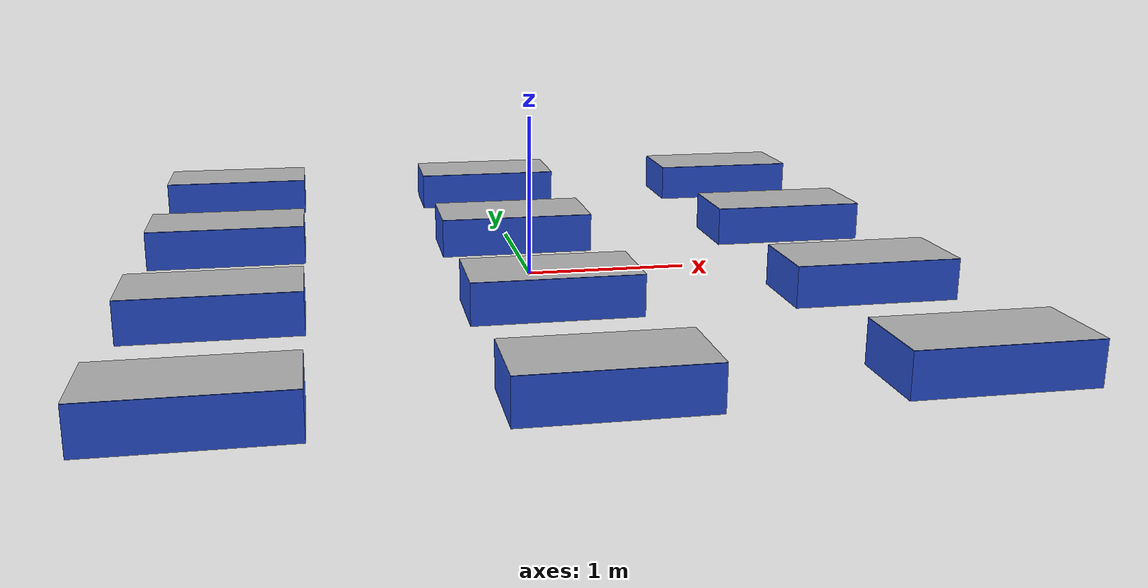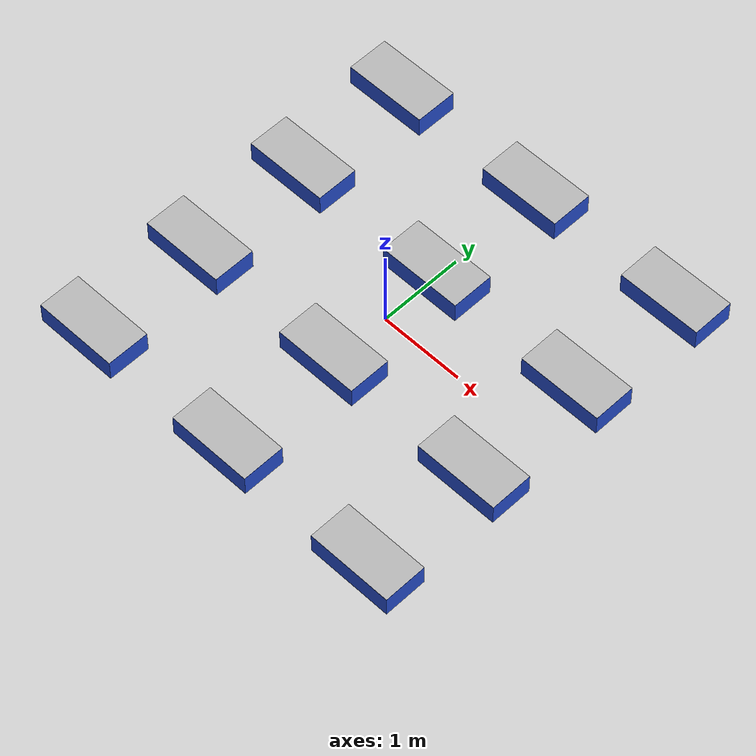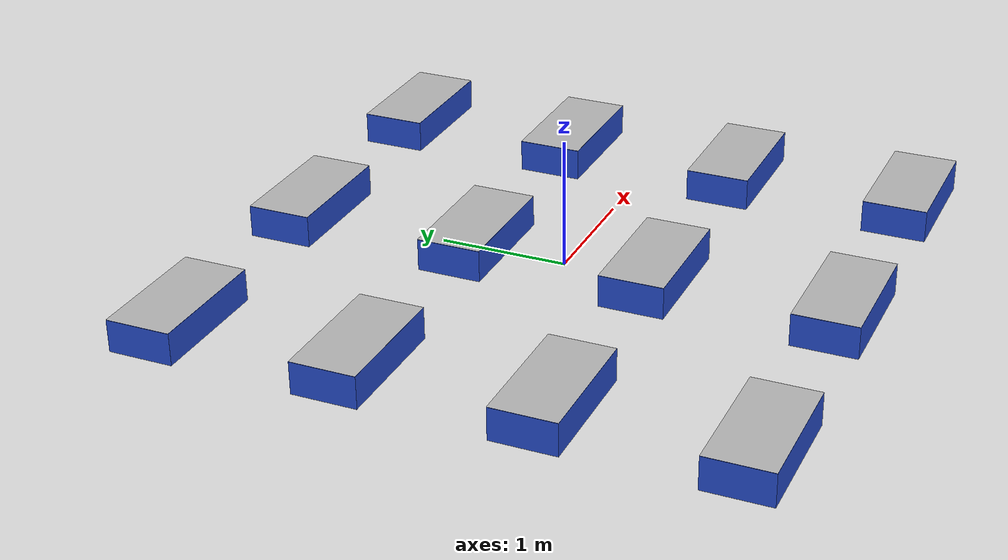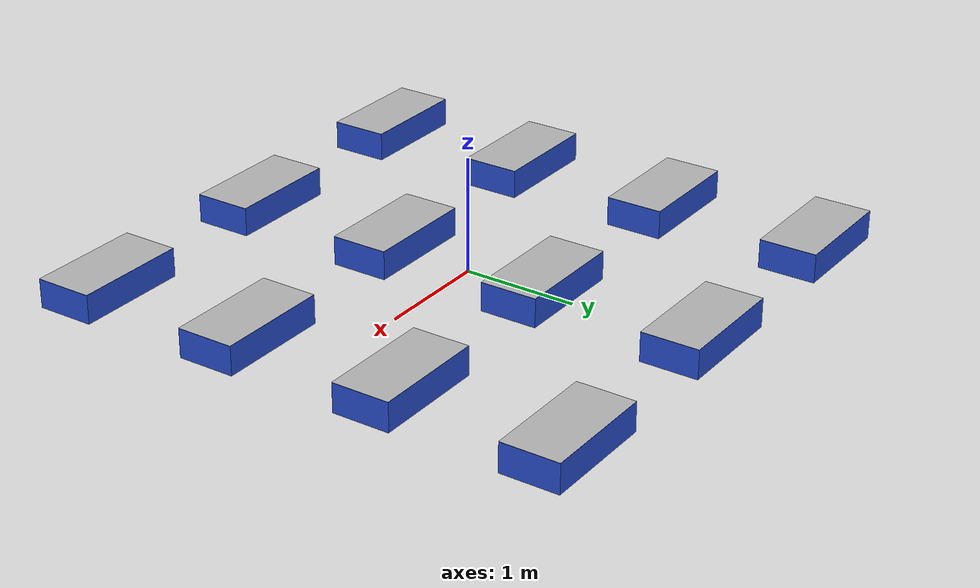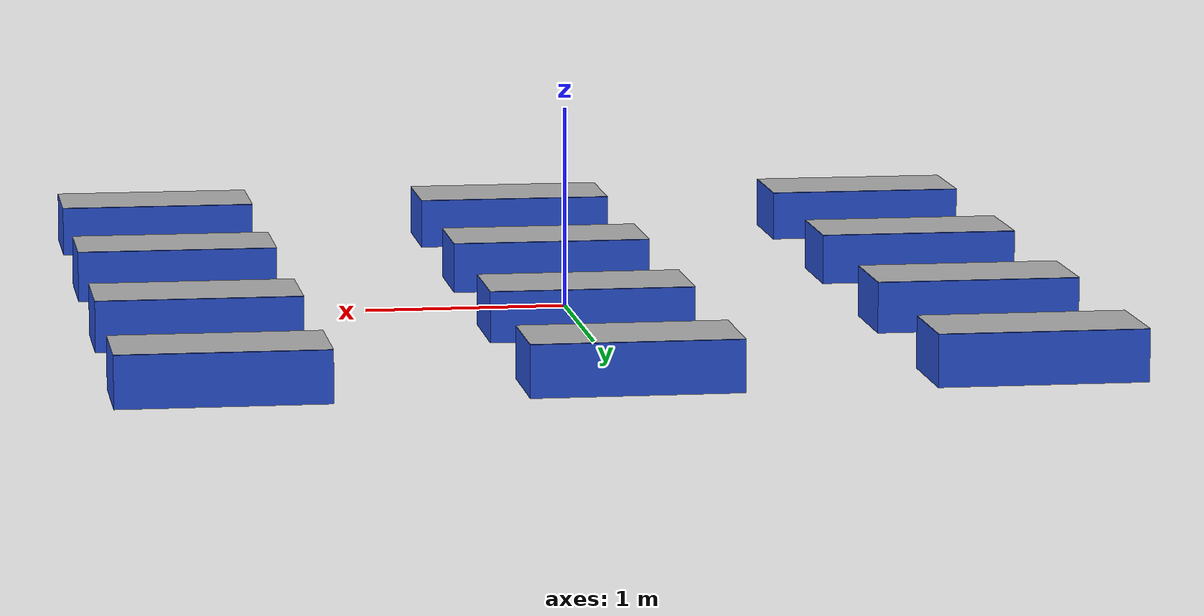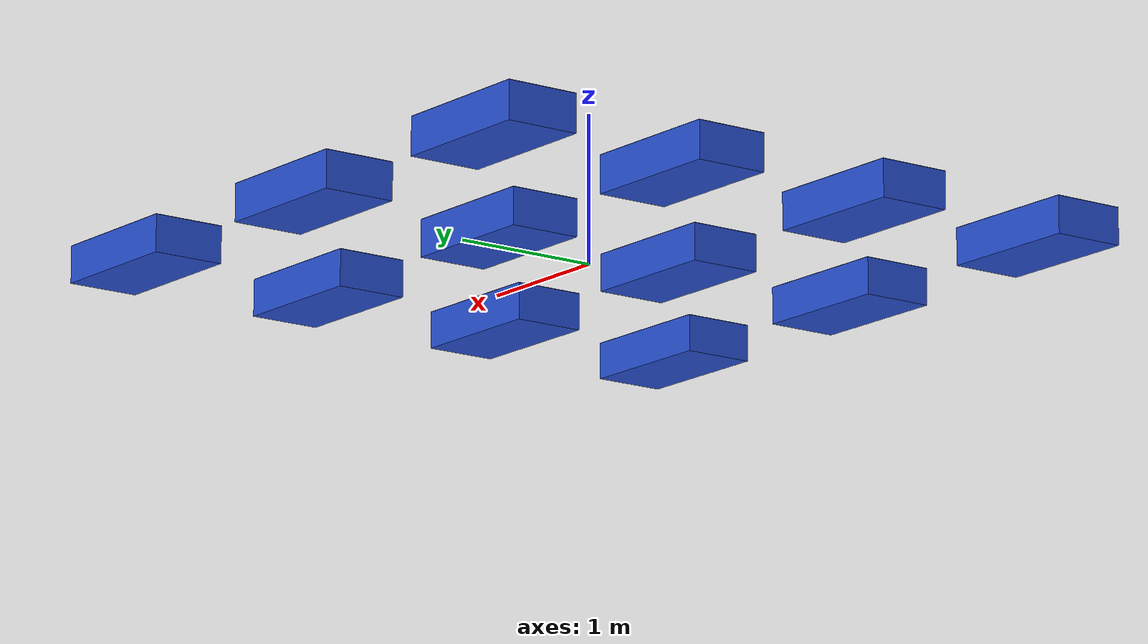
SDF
<?xml version='1.0'?>
<sdf version='1.6'>
  <model name='box_level'>
    <static>false</static>
    <include>
      <uri>model://logo_box1</uri>
      <name>box0</name>
      <static>false</static>
      <pose>1.9 2.15 0 0 0 0</pose>
    </include>
    <include>
      <uri>model://logo_box2</uri>
      <name>box1</name>
      <static>false</static>
      <pose>0 2.15 0 0 0 3.1415926</pose>
    </include>
    <include>
      <uri>model://logo_box3</uri>
      <name>box2</name>
      <static>false</static>
      <pose>-1.9 2.15 0 0 0 3.1415926</pose>
    </include>
    <include>
      <uri>model://logo_box4</uri>
      <name>box3</name>
      <static>false</static>
      <pose>1.9 0.72 0 0 0 0</pose>
    </include>
    <include>
      <uri>model://logo_box5</uri>
      <name>box4</name>
      <static>false</static>
      <pose>0 0.72 0 0 0 0</pose>
    </include>
    <include>
      <uri>model://logo_box6</uri>
      <name>box5</name>
      <static>false</static>
      <pose>-1.9 0.72 0 0 0 0</pose>
    </include>
    <include>
      <uri>model://logo_box7</uri>
      <name>box6</name>
      <static>false</static>
      <pose>1.9 -0.72 0 0 0 3.1415926</pose>
    </include>
    <include>
      <uri>model://logo_box8</uri>
      <name>box7</name>
      <static>false</static>
      <pose>0 -0.72 0 0 0 0</pose>
    </include>
    <include>
      <uri>model://logo_box9</uri>
      <name>box8</name>
      <static>false</static>
      <pose>-1.9 -0.72 0 0 0 3.1415926</pose>
    </include>
    <include>
      <uri>model://logo_box10</uri>
      <name>box9</name>
      <static>false</static>
      <pose>1.9 -2.15 0 0 0 3.1415926</pose>
    </include>
    <include>
      <uri>model://logo_box11</uri>
      <name>box10</name>
      <static>false</static>
      <pose>0 -2.15 0 0 0 0</pose>
    </include>
    <include>
      <uri>model://logo_box12</uri>
      <name>box11</name>
      <static>false</static>
      <pose>-1.9 -2.15 0 0 0 3.1415926</pose>
    </include>
  </model>
</sdf>

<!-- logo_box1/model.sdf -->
<sdf version='1.6'>
  <model name='logo_box1'>
    <static>false</static>
    <link name='box'>
      <pose>0 0 0.25 0 0 0</pose>
      <inertial>
        <mass>2</mass>
        <inertia>
          <ixx>0.052083</ixx>
          <ixy>0</ixy>
          <ixz>0</ixz>
          <iyy>0.177083</iyy>
          <iyz>0</iyz>
          <izz>0.208333</izz>
        </inertia>
      </inertial>
      <visual name='box'>
        <pose>0 0 -0.125 0 0 0</pose>
        <cast_shadows>true</cast_shadows>
        <geometry>
          <box>
            <size>1 0.5 0.25</size>
          </box>
        </geometry>
        <material>
          <script>
            <uri>file://media/materials/scripts/gazebo.material</uri>
            <name>Gazebo/Blue</name>
          </script>
        </material>
      </visual>
      <visual name='logo'>
        <pose>-0 0 0.002 0 0 0</pose>
        <cast_shadows>false</cast_shadows>
        <geometry>
          <plane>
            <normal>0 0 1</normal>
            <size>1 0.5</size>
          </plane>
        </geometry>
        <material>
          <script>
            <uri>model://logo_box/materials/scripts</uri>
            <uri>model://logo_box/materials/textures</uri>
            <name>tian_gong_zhu_ta/logo1</name>
          </script>
        </material>
      </visual>
      <collision name='box'>
        <pose>0 0 -0.125 0 0 0</pose>
        <geometry>
          <box>
            <size>1 0.5 0.25</size>
          </box>
        </geometry>
        <surface>
          <friction>
            <ode>
              <mu>100</mu>
              <mu2>50</mu2>
            </ode>
          </friction>
        </surface>
      </collision>
    </link>
  </model>
</sdf>

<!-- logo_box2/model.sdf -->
<sdf version='1.6'>
  <model name='logo_box2'>
    <static>false</static>
    <link name='box'>
      <pose>0 0 0.25 0 0 0</pose>
      <inertial>
        <mass>2</mass>
        <inertia>
          <ixx>0.052083</ixx>
          <ixy>0</ixy>
          <ixz>0</ixz>
          <iyy>0.177083</iyy>
          <iyz>0</iyz>
          <izz>0.208333</izz>
        </inertia>
      </inertial>
      <visual name='box'>
        <pose>0 0 -0.125 0 0 0</pose>
        <cast_shadows>true</cast_shadows>
        <geometry>
          <box>
            <size>1 0.5 0.25</size>
          </box>
        </geometry>
        <material>
          <script>
            <uri>file://media/materials/scripts/gazebo.material</uri>
            <name>Gazebo/Blue</name>
          </script>
        </material>
      </visual>
      <visual name='logo'>
        <pose>-0 0 0.002 0 0 0</pose>
        <cast_shadows>false</cast_shadows>
        <geometry>
          <plane>
            <normal>0 0 1</normal>
            <size>1 0.5</size>
          </plane>
        </geometry>
        <material>
          <script>
            <uri>model://logo_box/materials/scripts</uri>
            <uri>model://logo_box/materials/textures</uri>
            <name>tian_gong_zhu_ta/logo2</name>
          </script>
        </material>
      </visual>
      <collision name='box'>
        <pose>0 0 -0.125 0 0 0</pose>
        <geometry>
          <box>
            <size>1 0.5 0.25</size>
          </box>
        </geometry>
        <surface>
          <friction>
            <ode>
              <mu>100</mu>
              <mu2>50</mu2>
            </ode>
          </friction>
        </surface>
      </collision>
    </link>
  </model>
</sdf>

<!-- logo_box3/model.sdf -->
<sdf version='1.6'>
  <model name='logo_box3'>
    <static>false</static>
    <link name='box'>
      <pose>0 0 0.25 0 0 0</pose>
      <inertial>
        <mass>2</mass>
        <inertia>
          <ixx>0.052083</ixx>
          <ixy>0</ixy>
          <ixz>0</ixz>
          <iyy>0.177083</iyy>
          <iyz>0</iyz>
          <izz>0.208333</izz>
        </inertia>
      </inertial>
      <visual name='box'>
        <pose>0 0 -0.125 0 0 0</pose>
        <cast_shadows>true</cast_shadows>
        <geometry>
          <box>
            <size>1 0.5 0.25</size>
          </box>
        </geometry>
        <material>
          <script>
            <uri>file://media/materials/scripts/gazebo.material</uri>
            <name>Gazebo/Blue</name>
          </script>
        </material>
      </visual>
      <visual name='logo'>
        <pose>-0 0 0.002 0 0 0</pose>
        <cast_shadows>false</cast_shadows>
        <geometry>
          <plane>
            <normal>0 0 1</normal>
            <size>1 0.5</size>
          </plane>
        </geometry>
        <material>
          <script>
            <uri>model://logo_box/materials/scripts</uri>
            <uri>model://logo_box/materials/textures</uri>
            <name>tian_gong_zhu_ta/logo3</name>
          </script>
        </material>
      </visual>
      <collision name='box'>
        <pose>0 0 -0.125 0 0 0</pose>
        <geometry>
          <box>
            <size>1 0.5 0.25</size>
          </box>
        </geometry>
        <surface>
          <friction>
            <ode>
              <mu>100</mu>
              <mu2>50</mu2>
            </ode>
          </friction>
        </surface>
      </collision>
    </link>
  </model>
</sdf>

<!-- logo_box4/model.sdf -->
<sdf version='1.6'>
  <model name='logo_box4'>
    <static>false</static>
    <link name='box'>
      <pose>0 0 0.25 0 0 0</pose>
      <inertial>
        <mass>2</mass>
        <inertia>
          <ixx>0.052083</ixx>
          <ixy>0</ixy>
          <ixz>0</ixz>
          <iyy>0.177083</iyy>
          <iyz>0</iyz>
          <izz>0.208333</izz>
        </inertia>
      </inertial>
      <visual name='box'>
        <pose>0 0 -0.125 0 0 0</pose>
        <cast_shadows>true</cast_shadows>
        <geometry>
          <box>
            <size>1 0.5 0.25</size>
          </box>
        </geometry>
        <material>
          <script>
            <uri>file://media/materials/scripts/gazebo.material</uri>
            <name>Gazebo/Blue</name>
          </script>
        </material>
      </visual>
      <visual name='logo'>
        <pose>-0 0 0.002 0 0 0</pose>
        <cast_shadows>false</cast_shadows>
        <geometry>
          <plane>
            <normal>0 0 1</normal>
            <size>1 0.5</size>
          </plane>
        </geometry>
        <material>
          <script>
            <uri>model://logo_box/materials/scripts</uri>
            <uri>model://logo_box/materials/textures</uri>
            <name>tian_gong_zhu_ta/logo4</name>
          </script>
        </material>
      </visual>
      <collision name='box'>
        <pose>0 0 -0.125 0 0 0</pose>
        <geometry>
          <box>
            <size>1 0.5 0.25</size>
          </box>
        </geometry>
        <surface>
          <friction>
            <ode>
              <mu>100</mu>
              <mu2>50</mu2>
            </ode>
          </friction>
        </surface>
      </collision>
    </link>
  </model>
</sdf>

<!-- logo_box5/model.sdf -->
<sdf version='1.6'>
  <model name='logo_box5'>
    <static>false</static>
    <link name='box'>
      <pose>0 0 0.25 0 0 0</pose>
      <inertial>
        <mass>2</mass>
        <inertia>
          <ixx>0.052083</ixx>
          <ixy>0</ixy>
          <ixz>0</ixz>
          <iyy>0.177083</iyy>
          <iyz>0</iyz>
          <izz>0.208333</izz>
        </inertia>
      </inertial>
      <visual name='box'>
        <pose>0 0 -0.125 0 0 0</pose>
        <cast_shadows>true</cast_shadows>
        <geometry>
          <box>
            <size>1 0.5 0.25</size>
          </box>
        </geometry>
        <material>
          <script>
            <uri>file://media/materials/scripts/gazebo.material</uri>
            <name>Gazebo/Blue</name>
          </script>
        </material>
      </visual>
      <visual name='logo'>
        <pose>-0 0 0.002 0 0 0</pose>
        <cast_shadows>false</cast_shadows>
        <geometry>
          <plane>
            <normal>0 0 1</normal>
            <size>1 0.5</size>
          </plane>
        </geometry>
        <material>
          <script>
            <uri>model://logo_box/materials/scripts</uri>
            <uri>model://logo_box/materials/textures</uri>
            <name>tian_gong_zhu_ta/logo5</name>
          </script>
        </material>
      </visual>
      <collision name='box'>
        <pose>0 0 -0.125 0 0 0</pose>
        <geometry>
          <box>
            <size>1 0.5 0.25</size>
          </box>
        </geometry>
        <surface>
          <friction>
            <ode>
              <mu>100</mu>
              <mu2>50</mu2>
            </ode>
          </friction>
        </surface>
      </collision>
    </link>
  </model>
</sdf>

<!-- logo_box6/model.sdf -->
<sdf version='1.6'>
  <model name='logo_box6'>
    <static>false</static>
    <link name='box'>
      <pose>0 0 0.25 0 0 0</pose>
      <inertial>
        <mass>2</mass>
        <inertia>
          <ixx>0.052083</ixx>
          <ixy>0</ixy>
          <ixz>0</ixz>
          <iyy>0.177083</iyy>
          <iyz>0</iyz>
          <izz>0.208333</izz>
        </inertia>
      </inertial>
      <visual name='box'>
        <pose>0 0 -0.125 0 0 0</pose>
        <cast_shadows>true</cast_shadows>
        <geometry>
          <box>
            <size>1 0.5 0.25</size>
          </box>
        </geometry>
        <material>
          <script>
            <uri>file://media/materials/scripts/gazebo.material</uri>
            <name>Gazebo/Blue</name>
          </script>
        </material>
      </visual>
      <visual name='logo'>
        <pose>-0 0 0.002 0 0 0</pose>
        <cast_shadows>false</cast_shadows>
        <geometry>
          <plane>
            <normal>0 0 1</normal>
            <size>1 0.5</size>
          </plane>
        </geometry>
        <material>
          <script>
            <uri>model://logo_box/materials/scripts</uri>
            <uri>model://logo_box/materials/textures</uri>
            <name>tian_gong_zhu_ta/logo6</name>
          </script>
        </material>
      </visual>
      <collision name='box'>
        <pose>0 0 -0.125 0 0 0</pose>
        <geometry>
          <box>
            <size>1 0.5 0.25</size>
          </box>
        </geometry>
        <surface>
          <friction>
            <ode>
              <mu>100</mu>
              <mu2>50</mu2>
            </ode>
          </friction>
        </surface>
      </collision>
    </link>
  </model>
</sdf>

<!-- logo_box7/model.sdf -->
<sdf version='1.6'>
  <model name='logo_box7'>
    <static>false</static>
    <link name='box'>
      <pose>0 0 0.25 0 0 0</pose>
      <inertial>
        <mass>2</mass>
        <inertia>
          <ixx>0.052083</ixx>
          <ixy>0</ixy>
          <ixz>0</ixz>
          <iyy>0.177083</iyy>
          <iyz>0</iyz>
          <izz>0.208333</izz>
        </inertia>
      </inertial>
      <visual name='box'>
        <pose>0 0 -0.125 0 0 0</pose>
        <cast_shadows>true</cast_shadows>
        <geometry>
          <box>
            <size>1 0.5 0.25</size>
          </box>
        </geometry>
        <material>
          <script>
            <uri>file://media/materials/scripts/gazebo.material</uri>
            <name>Gazebo/Blue</name>
          </script>
        </material>
      </visual>
      <visual name='logo'>
        <pose>-0 0 0.002 0 0 0</pose>
        <cast_shadows>false</cast_shadows>
        <geometry>
          <plane>
            <normal>0 0 1</normal>
            <size>1 0.5</size>
          </plane>
        </geometry>
        <material>
          <script>
            <uri>model://logo_box/materials/scripts</uri>
            <uri>model://logo_box/materials/textures</uri>
            <name>tian_gong_zhu_ta/logo7</name>
          </script>
        </material>
      </visual>
      <collision name='box'>
        <pose>0 0 -0.125 0 0 0</pose>
        <geometry>
          <box>
            <size>1 0.5 0.25</size>
          </box>
        </geometry>
        <surface>
          <friction>
            <ode>
              <mu>100</mu>
              <mu2>50</mu2>
            </ode>
          </friction>
        </surface>
      </collision>
    </link>
  </model>
</sdf>

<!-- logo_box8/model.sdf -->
<sdf version='1.6'>
  <model name='logo_box8'>
    <static>false</static>
    <link name='box'>
      <pose>0 0 0.25 0 0 0</pose>
      <inertial>
        <mass>2</mass>
        <inertia>
          <ixx>0.052083</ixx>
          <ixy>0</ixy>
          <ixz>0</ixz>
          <iyy>0.177083</iyy>
          <iyz>0</iyz>
          <izz>0.208333</izz>
        </inertia>
      </inertial>
      <visual name='box'>
        <pose>0 0 -0.125 0 0 0</pose>
        <cast_shadows>true</cast_shadows>
        <geometry>
          <box>
            <size>1 0.5 0.25</size>
          </box>
        </geometry>
        <material>
          <script>
            <uri>file://media/materials/scripts/gazebo.material</uri>
            <name>Gazebo/Blue</name>
          </script>
        </material>
      </visual>
      <visual name='logo'>
        <pose>-0 0 0.002 0 0 0</pose>
        <cast_shadows>false</cast_shadows>
        <geometry>
          <plane>
            <normal>0 0 1</normal>
            <size>1 0.5</size>
          </plane>
        </geometry>
        <material>
          <script>
            <uri>model://logo_box/materials/scripts</uri>
            <uri>model://logo_box/materials/textures</uri>
            <name>tian_gong_zhu_ta/logo8</name>
          </script>
        </material>
      </visual>
      <collision name='box'>
        <pose>0 0 -0.125 0 0 0</pose>
        <geometry>
          <box>
            <size>1 0.5 0.25</size>
          </box>
        </geometry>
        <surface>
          <friction>
            <ode>
              <mu>100</mu>
              <mu2>50</mu2>
            </ode>
          </friction>
        </surface>
      </collision>
    </link>
  </model>
</sdf>

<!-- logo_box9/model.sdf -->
<sdf version='1.6'>
  <model name='logo_box9'>
    <static>false</static>
    <link name='box'>
      <pose>0 0 0.25 0 0 0</pose>
      <inertial>
        <mass>2</mass>
        <inertia>
          <ixx>0.052083</ixx>
          <ixy>0</ixy>
          <ixz>0</ixz>
          <iyy>0.177083</iyy>
          <iyz>0</iyz>
          <izz>0.208333</izz>
        </inertia>
      </inertial>
      <visual name='box'>
        <pose>0 0 -0.125 0 0 0</pose>
        <cast_shadows>true</cast_shadows>
        <geometry>
          <box>
            <size>1 0.5 0.25</size>
          </box>
        </geometry>
        <material>
          <script>
            <uri>file://media/materials/scripts/gazebo.material</uri>
            <name>Gazebo/Blue</name>
          </script>
        </material>
      </visual>
      <visual name='logo'>
        <pose>-0 0 0.002 0 0 0</pose>
        <cast_shadows>false</cast_shadows>
        <geometry>
          <plane>
            <normal>0 0 1</normal>
            <size>1 0.5</size>
          </plane>
        </geometry>
        <material>
          <script>
            <uri>model://logo_box/materials/scripts</uri>
            <uri>model://logo_box/materials/textures</uri>
            <name>tian_gong_zhu_ta/logo9</name>
          </script>
        </material>
      </visual>
      <collision name='box'>
        <pose>0 0 -0.125 0 0 0</pose>
        <geometry>
          <box>
            <size>1 0.5 0.25</size>
          </box>
        </geometry>
        <surface>
          <friction>
            <ode>
              <mu>100</mu>
              <mu2>50</mu2>
            </ode>
          </friction>
        </surface>
      </collision>
    </link>
  </model>
</sdf>

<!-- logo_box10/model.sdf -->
<sdf version='1.6'>
  <model name='logo_box10'>
    <static>false</static>
    <link name='box'>
      <pose>0 0 0.25 0 0 0</pose>
      <inertial>
        <mass>2</mass>
        <inertia>
          <ixx>0.052083</ixx>
          <ixy>0</ixy>
          <ixz>0</ixz>
          <iyy>0.177083</iyy>
          <iyz>0</iyz>
          <izz>0.208333</izz>
        </inertia>
      </inertial>
      <visual name='box'>
        <pose>0 0 -0.125 0 0 0</pose>
        <cast_shadows>true</cast_shadows>
        <geometry>
          <box>
            <size>1 0.5 0.25</size>
          </box>
        </geometry>
        <material>
          <script>
            <uri>file://media/materials/scripts/gazebo.material</uri>
            <name>Gazebo/Blue</name>
          </script>
        </material>
      </visual>
      <visual name='logo'>
        <pose>-0 0 0.002 0 0 0</pose>
        <cast_shadows>false</cast_shadows>
        <geometry>
          <plane>
            <normal>0 0 1</normal>
            <size>1 0.5</size>
          </plane>
        </geometry>
        <material>
          <script>
            <uri>model://logo_box/materials/scripts</uri>
            <uri>model://logo_box/materials/textures</uri>
            <name>tian_gong_zhu_ta/logo10</name>
          </script>
        </material>
      </visual>
      <collision name='box'>
        <pose>0 0 -0.125 0 0 0</pose>
        <geometry>
          <box>
            <size>1 0.5 0.25</size>
          </box>
        </geometry>
        <surface>
          <friction>
            <ode>
              <mu>100</mu>
              <mu2>50</mu2>
            </ode>
          </friction>
        </surface>
      </collision>
    </link>
  </model>
</sdf>

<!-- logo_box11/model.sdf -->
<sdf version='1.6'>
  <model name='logo_box11'>
    <static>false</static>
    <link name='box'>
      <pose>0 0 0.25 0 0 0</pose>
      <inertial>
        <mass>2</mass>
        <inertia>
          <ixx>0.052083</ixx>
          <ixy>0</ixy>
          <ixz>0</ixz>
          <iyy>0.177083</iyy>
          <iyz>0</iyz>
          <izz>0.208333</izz>
        </inertia>
      </inertial>
      <visual name='box'>
        <pose>0 0 -0.125 0 0 0</pose>
        <cast_shadows>true</cast_shadows>
        <geometry>
          <box>
            <size>1 0.5 0.25</size>
          </box>
        </geometry>
        <material>
          <script>
            <uri>file://media/materials/scripts/gazebo.material</uri>
            <name>Gazebo/Blue</name>
          </script>
        </material>
      </visual>
      <visual name='logo'>
        <pose>-0 0 0.002 0 0 0</pose>
        <cast_shadows>false</cast_shadows>
        <geometry>
          <plane>
            <normal>0 0 1</normal>
            <size>1 0.5</size>
          </plane>
        </geometry>
        <material>
          <script>
            <uri>model://logo_box/materials/scripts</uri>
            <uri>model://logo_box/materials/textures</uri>
            <name>tian_gong_zhu_ta/logo11</name>
          </script>
        </material>
      </visual>
      <collision name='box'>
        <pose>0 0 -0.125 0 0 0</pose>
        <geometry>
          <box>
            <size>1 0.5 0.25</size>
          </box>
        </geometry>
        <surface>
          <friction>
            <ode>
              <mu>100</mu>
              <mu2>50</mu2>
            </ode>
          </friction>
        </surface>
      </collision>
    </link>
  </model>
</sdf>

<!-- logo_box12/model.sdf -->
<sdf version='1.6'>
  <model name='logo_box12'>
    <static>false</static>
    <link name='box'>
      <pose>0 0 0.25 0 0 0</pose>
      <inertial>
        <mass>2</mass>
        <inertia>
          <ixx>0.052083</ixx>
          <ixy>0</ixy>
          <ixz>0</ixz>
          <iyy>0.177083</iyy>
          <iyz>0</iyz>
          <izz>0.208333</izz>
        </inertia>
      </inertial>
      <visual name='box'>
        <pose>0 0 -0.125 0 0 0</pose>
        <cast_shadows>true</cast_shadows>
        <geometry>
          <box>
            <size>1 0.5 0.25</size>
          </box>
        </geometry>
        <material>
          <script>
            <uri>file://media/materials/scripts/gazebo.material</uri>
            <name>Gazebo/Blue</name>
          </script>
        </material>
      </visual>
      <visual name='logo'>
        <pose>-0 0 0.002 0 0 0</pose>
        <cast_shadows>false</cast_shadows>
        <geometry>
          <plane>
            <normal>0 0 1</normal>
            <size>1 0.5</size>
          </plane>
        </geometry>
        <material>
          <script>
            <uri>model://logo_box/materials/scripts</uri>
            <uri>model://logo_box/materials/textures</uri>
            <name>tian_gong_zhu_ta/logo12</name>
          </script>
        </material>
      </visual>
      <collision name='box'>
        <pose>0 0 -0.125 0 0 0</pose>
        <geometry>
          <box>
            <size>1 0.5 0.25</size>
          </box>
        </geometry>
        <surface>
          <friction>
            <ode>
              <mu>100</mu>
              <mu2>50</mu2>
            </ode>
          </friction>
        </surface>
      </collision>
    </link>
  </model>
</sdf>
